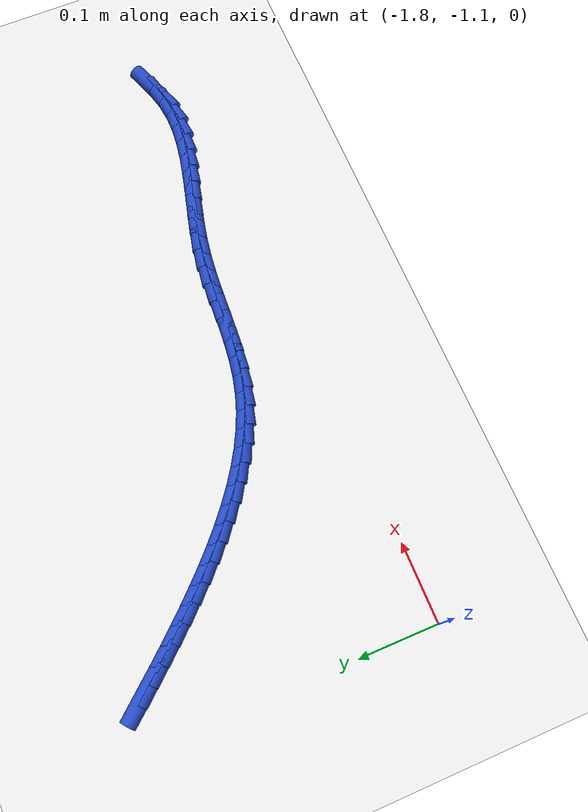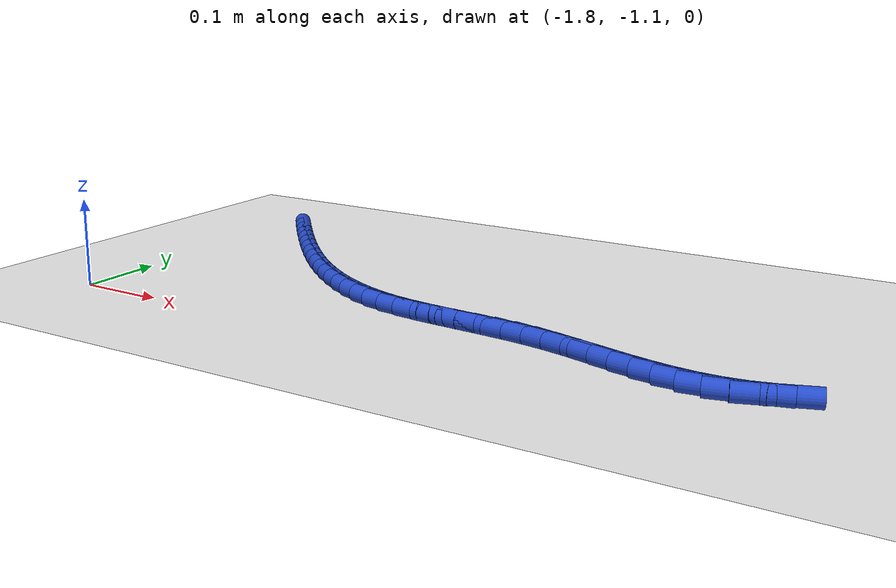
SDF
<sdf version="1.6">
 <world name="default">
  <model name="ground_plane">
   <static>1</static>
   <link name="link">
    <collision name="collision">
     <geometry><plane><normal>0 0 1</normal><size>100 100</size></plane></geometry>
     <surface><friction><ode><mu>100</mu><mu2>50</mu2></ode></friction></surface>
    </collision>
    <visual name="visual">
     <cast_shadows>0</cast_shadows>
     <geometry><plane><normal>0 0 1</normal><size>100 100</size></plane></geometry>
     <material>
      <script><uri>file://media/materials/scripts/gazebo.material</uri><name>Gazebo/WhiteGlow</name></script>
     </material>
    </visual>
   </link>
  </model>
  <model name="line">
   <link name="link_176">
    <pose>-1.7414891785908992 -0.7693673522682078 0.01 0 1.57 -0.8757015459926476</pose>
    <collision name="collision">
     <geometry><cylinder><radius>0.01</radius><length>0.08</length></cylinder></geometry>
    </collision>
    <visual name="visual">
     <material>
      <script><name>Gazebo/Blue</name><uri>file://media/materials/scripts/gazebo.material</uri></script>
     </material>
     <geometry><cylinder><radius>0.01</radius><length>0.08</length></cylinder></geometry>
    </visual>
   </link>
   <link name="link_177">
    <pose>-1.7260341913834842 -0.7878998988165821 0.01 0 1.57 -0.8607546508439026</pose>
    <collision name="collision">
     <geometry><cylinder><radius>0.01</radius><length>0.08</length></cylinder></geometry>
    </collision>
    <visual name="visual">
     <material>
      <script><name>Gazebo/Blue</name><uri>file://media/materials/scripts/gazebo.material</uri></script>
     </material>
     <geometry><cylinder><radius>0.01</radius><length>0.08</length></cylinder></geometry>
    </visual>
   </link>
   <link name="link_178">
    <pose>-1.7101495598784895 -0.806378971127653 0.01 0 1.57 -0.8494895706007562</pose>
    <collision name="collision">
     <geometry><cylinder><radius>0.01</radius><length>0.08</length></cylinder></geometry>
    </collision>
    <visual name="visual">
     <material>
      <script><name>Gazebo/Blue</name><uri>file://media/materials/scripts/gazebo.material</uri></script>
     </material>
     <geometry><cylinder><radius>0.01</radius><length>0.08</length></cylinder></geometry>
    </visual>
   </link>
   <link name="link_179">
    <pose>-1.6938973474684897 -0.82486036216821 0.01 0 1.57 -0.8358812417409368</pose>
    <collision name="collision">
     <geometry><cylinder><radius>0.01</radius><length>0.08</length></cylinder></geometry>
    </collision>
    <visual name="visual">
     <material>
      <script><name>Gazebo/Blue</name><uri>file://media/materials/scripts/gazebo.material</uri></script>
     </material>
     <geometry><cylinder><radius>0.01</radius><length>0.08</length></cylinder></geometry>
    </visual>
   </link>
   <link name="link_180">
    <pose>-1.6772804701907198 -0.8432457649336106 0.01 0 1.57 -0.8178867207922911</pose>
    <collision name="collision">
     <geometry><cylinder><radius>0.01</radius><length>0.08</length></cylinder></geometry>
    </collision>
    <visual name="visual">
     <material>
      <script><name>Gazebo/Blue</name><uri>file://media/materials/scripts/gazebo.material</uri></script>
     </material>
     <geometry><cylinder><radius>0.01</radius><length>0.08</length></cylinder></geometry>
    </visual>
   </link>
   <link name="link_181">
    <pose>-1.6602822939240611 -0.8613859372788929 0.01 0 1.57 -0.7953445621663107</pose>
    <collision name="collision">
     <geometry><cylinder><radius>0.01</radius><length>0.08</length></cylinder></geometry>
    </collision>
    <visual name="visual">
     <material>
      <script><name>Gazebo/Blue</name><uri>file://media/materials/scripts/gazebo.material</uri></script>
     </material>
     <geometry><cylinder><radius>0.01</radius><length>0.08</length></cylinder></geometry>
    </visual>
   </link>
   <link name="link_182">
    <pose>-1.6428861721694776 -0.8791316048101946 0.01 0 1.57 -0.7680111647149178</pose>
    <collision name="collision">
     <geometry><cylinder><radius>0.01</radius><length>0.08</length></cylinder></geometry>
    </collision>
    <visual name="visual">
     <material>
      <script><name>Gazebo/Blue</name><uri>file://media/materials/scripts/gazebo.material</uri></script>
     </material>
     <geometry><cylinder><radius>0.01</radius><length>0.08</length></cylinder></geometry>
    </visual>
   </link>
   <link name="link_183">
    <pose>-1.6250754584279303 -0.8963334931336538 0.01 0 1.57 -0.7355666955235499</pose>
    <collision name="collision">
     <geometry><cylinder><radius>0.01</radius><length>0.08</length></cylinder></geometry>
    </collision>
    <visual name="visual">
     <material>
      <script><name>Gazebo/Blue</name><uri>file://media/materials/scripts/gazebo.material</uri></script>
     </material>
     <geometry><cylinder><radius>0.01</radius><length>0.08</length></cylinder></geometry>
    </visual>
   </link>
   <link name="link_184">
    <pose>-1.6068335062003816 -0.9128423278554102 0.01 0 1.57 -0.6976250734472712</pose>
    <collision name="collision">
     <geometry><cylinder><radius>0.01</radius><length>0.08</length></cylinder></geometry>
    </collision>
    <visual name="visual">
     <material>
      <script><name>Gazebo/Blue</name><uri>file://media/materials/scripts/gazebo.material</uri></script>
     </material>
     <geometry><cylinder><radius>0.01</radius><length>0.08</length></cylinder></geometry>
    </visual>
   </link>
   <link name="link_185">
    <pose>-1.588143668987794 -0.9285088345816018 0.01 0 1.57 -0.6537501600058746</pose>
    <collision name="collision">
     <geometry><cylinder><radius>0.01</radius><length>0.08</length></cylinder></geometry>
    </collision>
    <visual name="visual">
     <material>
      <script><name>Gazebo/Blue</name><uri>file://media/materials/scripts/gazebo.material</uri></script>
     </material>
     <geometry><cylinder><radius>0.01</radius><length>0.08</length></cylinder></geometry>
    </visual>
   </link>
   <link name="link_186">
    <pose>-1.5689893002911297 -0.9431837389183678 0.01 0 1.57 -0.6034825419479803</pose>
    <collision name="collision">
     <geometry><cylinder><radius>0.01</radius><length>0.08</length></cylinder></geometry>
    </collision>
    <visual name="visual">
     <material>
      <script><name>Gazebo/Blue</name><uri>file://media/materials/scripts/gazebo.material</uri></script>
     </material>
     <geometry><cylinder><radius>0.01</radius><length>0.08</length></cylinder></geometry>
    </visual>
   </link>
   <link name="link_187">
    <pose>-1.549353753611351 -0.956717766471846 0.01 0 1.57 -0.5463821474351706</pose>
    <collision name="collision">
     <geometry><cylinder><radius>0.01</radius><length>0.08</length></cylinder></geometry>
    </collision>
    <visual name="visual">
     <material>
      <script><name>Gazebo/Blue</name><uri>file://media/materials/scripts/gazebo.material</uri></script>
     </material>
     <geometry><cylinder><radius>0.01</radius><length>0.08</length></cylinder></geometry>
    </visual>
   </link>
   <link name="link_188">
    <pose>-1.52922038244942 -0.9689616428481757 0.01 0 1.57 -0.48209190826646403</pose>
    <collision name="collision">
     <geometry><cylinder><radius>0.01</radius><length>0.08</length></cylinder></geometry>
    </collision>
    <visual name="visual">
     <material>
      <script><name>Gazebo/Blue</name><uri>file://media/materials/scripts/gazebo.material</uri></script>
     </material>
     <geometry><cylinder><radius>0.01</radius><length>0.08</length></cylinder></geometry>
    </visual>
   </link>
   <link name="link_189">
    <pose>-1.508572540306299 -0.9797660936534954 0.01 0 1.57 -0.41042542610545407</pose>
    <collision name="collision">
     <geometry><cylinder><radius>0.01</radius><length>0.08</length></cylinder></geometry>
    </collision>
    <visual name="visual">
     <material>
      <script><name>Gazebo/Blue</name><uri>file://media/materials/scripts/gazebo.material</uri></script>
     </material>
     <geometry><cylinder><radius>0.01</radius><length>0.08</length></cylinder></geometry>
    </visual>
   </link>
   <link name="link_190">
    <pose>-1.48739358068295 -0.9889818444939438 0.01 0 1.57 -0.3314753483634076</pose>
    <collision name="collision">
     <geometry><cylinder><radius>0.01</radius><length>0.08</length></cylinder></geometry>
    </collision>
    <visual name="visual">
     <material>
      <script><name>Gazebo/Blue</name><uri>file://media/materials/scripts/gazebo.material</uri></script>
     </material>
     <geometry><cylinder><radius>0.01</radius><length>0.08</length></cylinder></geometry>
    </visual>
   </link>
   <link name="link_191">
    <pose>-1.465666857080336 -0.9964596209756591 0.01 0 1.57 -0.2469244546935109</pose>
    <collision name="collision">
     <geometry><cylinder><radius>0.01</radius><length>0.08</length></cylinder></geometry>
    </collision>
    <visual name="visual">
     <material>
      <script><name>Gazebo/Blue</name><uri>file://media/materials/scripts/gazebo.material</uri></script>
     </material>
     <geometry><cylinder><radius>0.01</radius><length>0.08</length></cylinder></geometry>
    </visual>
   </link>
   <link name="link_192">
    <pose>-1.4433805412089042 -1.0020772972339396 0.01 0 1.57 -0.17180454925865546</pose>
    <collision name="collision">
     <geometry><cylinder><radius>0.01</radius><length>0.08</length></cylinder></geometry>
    </collision>
    <visual name="visual">
     <material>
      <script><name>Gazebo/Blue</name><uri>file://media/materials/scripts/gazebo.material</uri></script>
     </material>
     <geometry><cylinder><radius>0.01</radius><length>0.08</length></cylinder></geometry>
    </visual>
   </link>
   <link name="link_193">
    <pose>-1.4205797448653654 -1.0060335801941855 0.01 0 1.57 -0.11582661711577384</pose>
    <collision name="collision">
     <geometry><cylinder><radius>0.01</radius><length>0.08</length></cylinder></geometry>
    </collision>
    <visual name="visual">
     <material>
      <script><name>Gazebo/Blue</name><uri>file://media/materials/scripts/gazebo.material</uri></script>
     </material>
     <geometry><cylinder><radius>0.01</radius><length>0.08</length></cylinder></geometry>
    </visual>
   </link>
   <link name="link_194">
    <pose>-1.3973467610866475 -1.0087366770094945 0.01 0 1.57 -0.07878263063937932</pose>
    <collision name="collision">
     <geometry><cylinder><radius>0.01</radius><length>0.08</length></cylinder></geometry>
    </collision>
    <visual name="visual">
     <material>
      <script><name>Gazebo/Blue</name><uri>file://media/materials/scripts/gazebo.material</uri></script>
     </material>
     <geometry><cylinder><radius>0.01</radius><length>0.08</length></cylinder></geometry>
    </visual>
   </link>
   <link name="link_195">
    <pose>-1.3737645229324962 -1.010598401085086 0.01 0 1.57 -0.05998043001546617</pose>
    <collision name="collision">
     <geometry><cylinder><radius>0.01</radius><length>0.08</length></cylinder></geometry>
    </collision>
    <visual name="visual">
     <material>
      <script><name>Gazebo/Blue</name><uri>file://media/materials/scripts/gazebo.material</uri></script>
     </material>
     <geometry><cylinder><radius>0.01</radius><length>0.08</length></cylinder></geometry>
    </visual>
   </link>
   <link name="link_196">
    <pose>-1.3499159634626583 -1.0120305658261775 0.01 0 1.57 -0.05878795305611198</pose>
    <collision name="collision">
     <geometry><cylinder><radius>0.01</radius><length>0.08</length></cylinder></geometry>
    </collision>
    <visual name="visual">
     <material>
      <script><name>Gazebo/Blue</name><uri>file://media/materials/scripts/gazebo.material</uri></script>
     </material>
     <geometry><cylinder><radius>0.01</radius><length>0.08</length></cylinder></geometry>
    </visual>
   </link>
   <link name="link_197">
    <pose>-1.3258840157368792 -1.0134449846379876 0.01 0 1.57 -0.07480034840900193</pose>
    <collision name="collision">
     <geometry><cylinder><radius>0.01</radius><length>0.08</length></cylinder></geometry>
    </collision>
    <visual name="visual">
     <material>
      <script><name>Gazebo/Blue</name><uri>file://media/materials/scripts/gazebo.material</uri></script>
     </material>
     <geometry><cylinder><radius>0.01</radius><length>0.08</length></cylinder></geometry>
    </visual>
   </link>
   <link name="link_198">
    <pose>-1.3017516128149054 -1.0152534709257348 0.01 0 1.57 -0.10783576057808833</pose>
    <collision name="collision">
     <geometry><cylinder><radius>0.01</radius><length>0.08</length></cylinder></geometry>
    </collision>
    <visual name="visual">
     <material>
      <script><name>Gazebo/Blue</name><uri>file://media/materials/scripts/gazebo.material</uri></script>
     </material>
     <geometry><cylinder><radius>0.01</radius><length>0.08</length></cylinder></geometry>
    </visual>
   </link>
   <link name="link_199">
    <pose>-1.277601687756482 -1.0178678380946382 0.01 0 1.57 -0.15756285434212153</pose>
    <collision name="collision">
     <geometry><cylinder><radius>0.01</radius><length>0.08</length></cylinder></geometry>
    </collision>
    <visual name="visual">
     <material>
      <script><name>Gazebo/Blue</name><uri>file://media/materials/scripts/gazebo.material</uri></script>
     </material>
     <geometry><cylinder><radius>0.01</radius><length>0.08</length></cylinder></geometry>
    </visual>
   </link>
   <link name="link_200">
    <pose>-1.2535166964318676 -1.021694457225791 0.01 0 1.57 -0.20985518276445084</pose>
    <collision name="collision">
     <geometry><cylinder><radius>0.01</radius><length>0.08</length></cylinder></geometry>
    </collision>
    <visual name="visual">
     <material>
      <script><name>Gazebo/Blue</name><uri>file://media/materials/scripts/gazebo.material</uri></script>
     </material>
     <geometry><cylinder><radius>0.01</radius><length>0.08</length></cylinder></geometry>
    </visual>
   </link>
   <link name="link_201">
    <pose>-1.229549248883674 -1.026799309112374 0.01 0 1.57 -0.2430938492918636</pose>
    <collision name="collision">
     <geometry><cylinder><radius>0.01</radius><length>0.08</length></cylinder></geometry>
    </collision>
    <visual name="visual">
     <material>
      <script><name>Gazebo/Blue</name><uri>file://media/materials/scripts/gazebo.material</uri></script>
     </material>
     <geometry><cylinder><radius>0.01</radius><length>0.08</length></cylinder></geometry>
    </visual>
   </link>
   <link name="link_202">
    <pose>-1.2057049819571524 -1.032712647397844 0.01 0 1.57 -0.2558658078998719</pose>
    <collision name="collision">
     <geometry><cylinder><radius>0.01</radius><length>0.08</length></cylinder></geometry>
    </collision>
    <visual name="visual">
     <material>
      <script><name>Gazebo/Blue</name><uri>file://media/materials/scripts/gazebo.material</uri></script>
     </material>
     <geometry><cylinder><radius>0.01</radius><length>0.08</length></cylinder></geometry>
    </visual>
   </link>
   <link name="link_203">
    <pose>-1.1819854073949814 -1.0389176791210566 0.01 0 1.57 -0.24823074176075388</pose>
    <collision name="collision">
     <geometry><cylinder><radius>0.01</radius><length>0.08</length></cylinder></geometry>
    </collision>
    <visual name="visual">
     <material>
      <script><name>Gazebo/Blue</name><uri>file://media/materials/scripts/gazebo.material</uri></script>
     </material>
     <geometry><cylinder><radius>0.01</radius><length>0.08</length></cylinder></geometry>
    </visual>
   </link>
   <link name="link_204">
    <pose>-1.1583920369398395 -1.0448976113208666 0.01 0 1.57 -0.21962104154193451</pose>
    <collision name="collision">
     <geometry><cylinder><radius>0.01</radius><length>0.08</length></cylinder></geometry>
    </collision>
    <visual name="visual">
     <material>
      <script><name>Gazebo/Blue</name><uri>file://media/materials/scripts/gazebo.material</uri></script>
     </material>
     <geometry><cylinder><radius>0.01</radius><length>0.08</length></cylinder></geometry>
    </visual>
   </link>
   <link name="link_205">
    <pose>-1.1349263823344053 -1.0501356510361277 0.01 0 1.57 -0.16889662107227893</pose>
    <collision name="collision">
     <geometry><cylinder><radius>0.01</radius><length>0.08</length></cylinder></geometry>
    </collision>
    <visual name="visual">
     <material>
      <script><name>Gazebo/Blue</name><uri>file://media/materials/scripts/gazebo.material</uri></script>
     </material>
     <geometry><cylinder><radius>0.01</radius><length>0.08</length></cylinder></geometry>
    </visual>
   </link>
   <link name="link_206">
    <pose>-1.1115899553213577 -1.0541150053056951 0.01 0 1.57 -0.09468736823517558</pose>
    <collision name="collision">
     <geometry><cylinder><radius>0.01</radius><length>0.08</length></cylinder></geometry>
    </collision>
    <visual name="visual">
     <material>
      <script><name>Gazebo/Blue</name><uri>file://media/materials/scripts/gazebo.material</uri></script>
     </material>
     <geometry><cylinder><radius>0.01</radius><length>0.08</length></cylinder></geometry>
    </visual>
   </link>
   <link name="link_207">
    <pose>-1.0883842676433753 -1.0563188811684239 0.01 0 1.57 0.0038310319495115713</pose>
    <collision name="collision">
     <geometry><cylinder><radius>0.01</radius><length>0.08</length></cylinder></geometry>
    </collision>
    <visual name="visual">
     <material>
      <script><name>Gazebo/Blue</name><uri>file://media/materials/scripts/gazebo.material</uri></script>
     </material>
     <geometry><cylinder><radius>0.01</radius><length>0.08</length></cylinder></geometry>
    </visual>
   </link>
   <link name="link_208">
    <pose>-1.0653108310431363 -1.0562304856631684 0.01 0 1.57 0.125641369276098</pose>
    <collision name="collision">
     <geometry><cylinder><radius>0.01</radius><length>0.08</length></cylinder></geometry>
    </collision>
    <visual name="visual">
     <material>
      <script><name>Gazebo/Blue</name><uri>file://media/materials/scripts/gazebo.material</uri></script>
     </material>
     <geometry><cylinder><radius>0.01</radius><length>0.08</length></cylinder></geometry>
    </visual>
   </link>
   <link name="link_209">
    <pose>-1.0423711569122407 -1.0533330514649049 0.01 0 1.57 0.2559718778617135</pose>
    <collision name="collision">
     <geometry><cylinder><radius>0.01</radius><length>0.08</length></cylinder></geometry>
    </collision>
    <visual name="visual">
     <material>
      <script><name>Gazebo/Blue</name><uri>file://media/materials/scripts/gazebo.material</uri></script>
     </material>
     <geometry><cylinder><radius>0.01</radius><length>0.08</length></cylinder></geometry>
    </visual>
   </link>
   <link name="link_210">
    <pose>-1.019563276505033 -1.0473639337261171 0.01 0 1.57 0.35553379796828155</pose>
    <collision name="collision">
     <geometry><cylinder><radius>0.01</radius><length>0.08</length></cylinder></geometry>
    </collision>
    <visual name="visual">
     <material>
      <script><name>Gazebo/Blue</name><uri>file://media/materials/scripts/gazebo.material</uri></script>
     </material>
     <geometry><cylinder><radius>0.01</radius><length>0.08</length></cylinder></geometry>
    </visual>
   </link>
  </model>
 </world>
</sdf>
